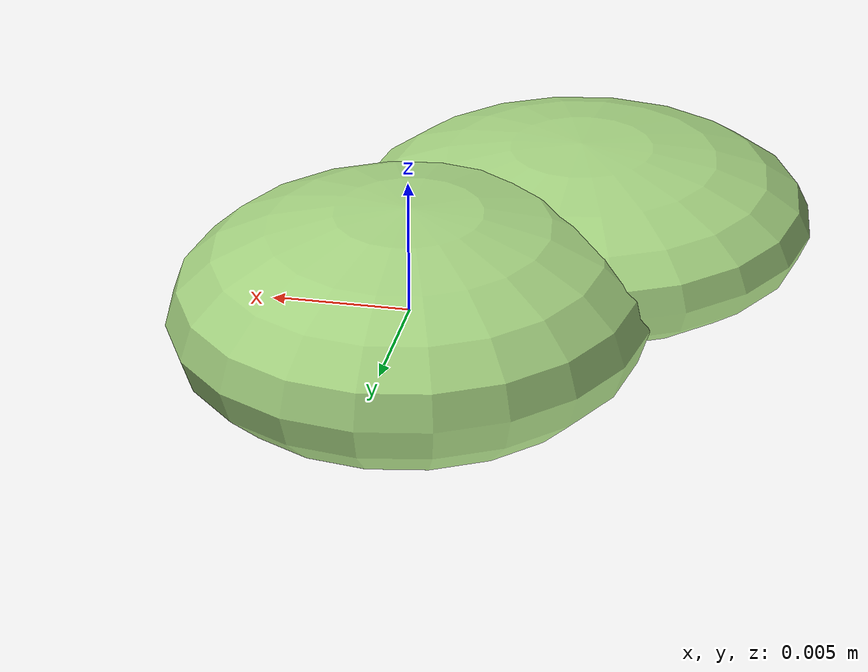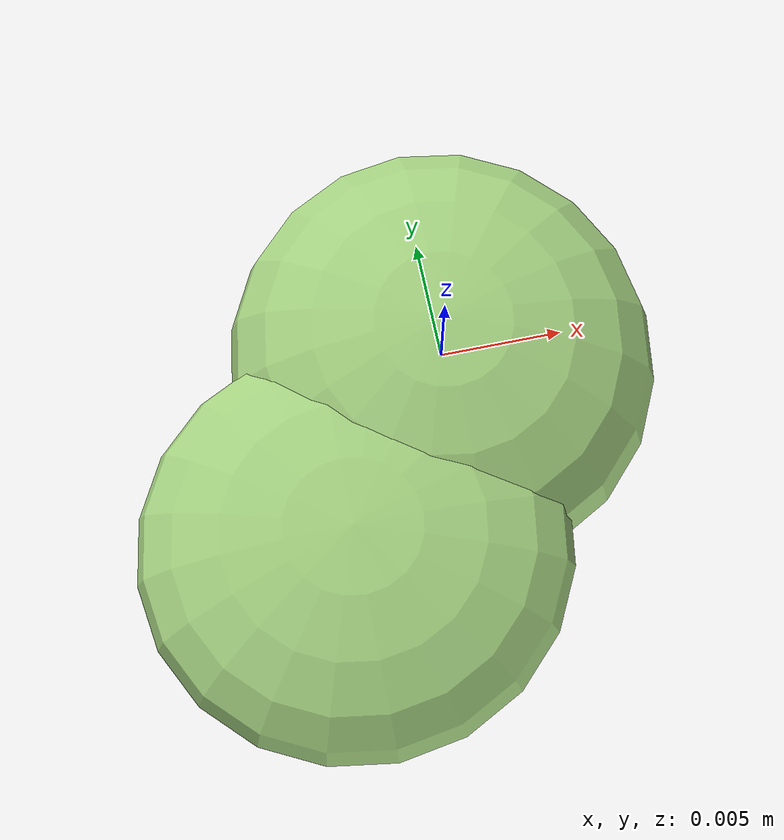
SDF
<?xml version="1.0" ?>
<!-- |    This document was autogenerated by xmacro from data/veggie_template/veggie_base.sdf.xacro  | -->
<!-- |    EDITING THIS FILE BY HAND IS NOT RECOMMENDED                                               | -->
<sdf version="1.8">
	<!-- Parameters -->
	<!-- Base -->
	<!-- Joint 0 -->
	<!-- Link 1 -->
	<!-- Joint 1 -->
	<!-- Link 2 -->
	<!-- Primitives -->
	<!-- All dimensions are half -->
	<!-- Object -->
	<model name="veggie">
		<!-- link0 -->
		<link name="link0">
			<inertial>
				<mass>0.0013409738712069441</mass>
				<inertia>
					<ixx>2.6523340369332707e-08</ixx>
					<ixy>0</ixy>
					<ixz>0</ixz>
					<iyy>2.460986554477691e-08</iyy>
					<iyz>0</iyz>
					<izz>4.2258093288881586e-08</izz>
				</inertia>
			</inertial>
			<visual name="link0_visual">
				<pose>0 0 0 0 0 0</pose>
				<geometry>
					<ellipsoid>
						<radii>0.008672666630803169 0.009074678654382298 0.004067680026547921</radii>
					</ellipsoid>
				</geometry>
				<material>
					<ambient>0.659 0.839 0.514 1</ambient>
					<diffuse>0.659 0.839 0.514 1</diffuse>
					<specular>0 0 0 0</specular>
					<emissive>0 0 0 1</emissive>
				</material>
			</visual>
			<collision name="link0_collision">
				<pose>0 0 0 0 0 0 </pose>
				<geometry>
					<ellipsoid>
						<radii>0.008672666630803169 0.009074678654382298 0.004067680026547921</radii>
					</ellipsoid>
				</geometry>
			</collision>
		</link>
		<!-- link1 -->
		<joint name="joint0" type="fixed">
			<pose relative_to="link0">-0.004922716898630629 -0.007164898873414125 0.0006720855264533036 0.0 0.0 0.0</pose>
			<parent>link0</parent>
			<child>link1</child>
		</joint>
		<link name="link1">
			<pose relative_to="joint0">0 0 0 0 0 0</pose>
			<inertial>
				<mass>0.0008914285433082367</mass>
				<inertia>
					<ixx>1.409478002885967e-08</ixx>
					<ixy>0</ixy>
					<ixz>0</ixz>
					<iyy>1.4404000906631899e-08</iyy>
					<iyz>0</iyz>
					<izz>2.5287418163666122e-08</izz>
				</inertia>
			</inertial>
			<visual name="link1_visual">
				<pose>0 0 0 0 0 0</pose>
				<geometry>
					<ellipsoid>
						<radii>0.008472629361311905 0.008369649709800772 0.003001037488331411</radii>
					</ellipsoid>
				</geometry>
				<material>
					<ambient>0.659 0.839 0.514 1</ambient>
					<diffuse>0.659 0.839 0.514 1</diffuse>
					<specular>0 0 0 0</specular>
					<emissive>0 0 0 1</emissive>
				</material>
			</visual>
			<collision name="link1_collision">
				<pose>0 0 0 0 0 0 </pose>
				<geometry>
					<ellipsoid>
						<radii>0.008472629361311905 0.008369649709800772 0.003001037488331411</radii>
					</ellipsoid>
				</geometry>
			</collision>
		</link>
		<!-- link2 -->
	</model>
</sdf>
